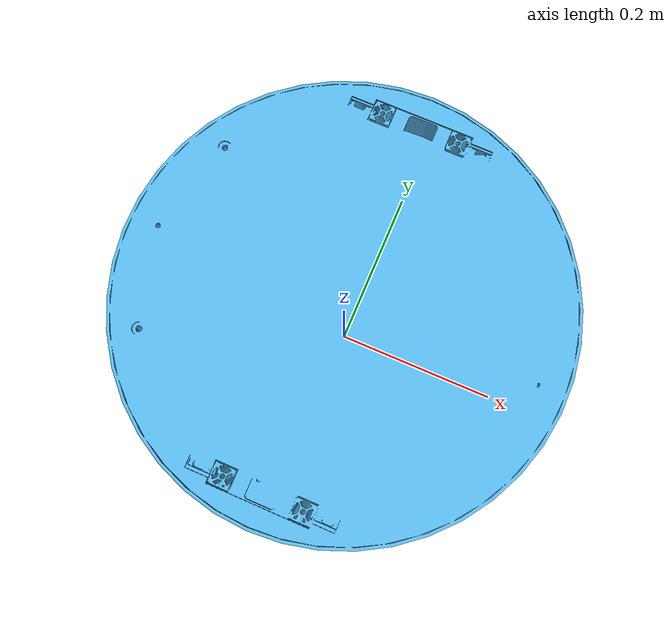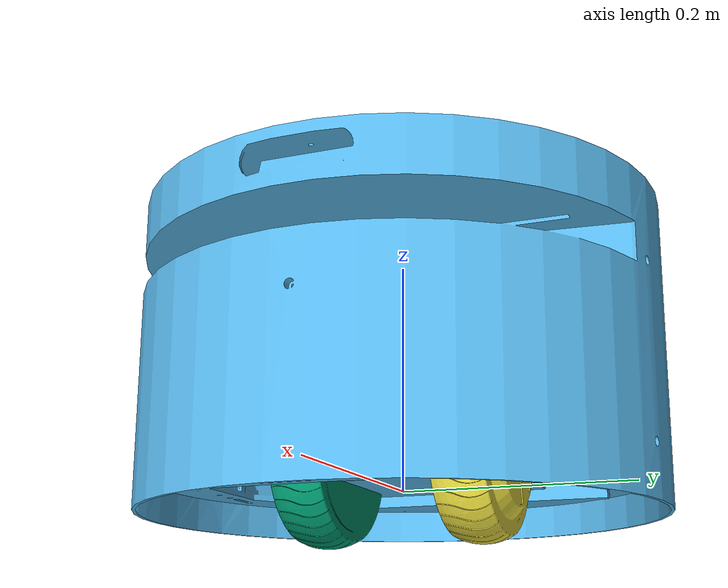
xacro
<?xml version="1.0"?>
<robot name="robot" xmlns:xacro="http://www.ros.org/wiki/xacro">

  <!-- Include Gazebo + transmissions -->
  <xacro:include filename="$(find robot_description)/urdf/robot_gazebo.xacro"/>

  <!-- Base -->
  <link name="base_footprint"/>

  <link name="base_link">
    <inertial>
      <origin xyz="0 0 0.04" rpy="0.0 0.25 0.3"/>
      <mass value="0.82573504"/>
      <inertia
        ixx="0.022124416" ixy="-0.000122941"
        ixz="0.000349387"
        iyy="0.021193702" iyz="-0.0000501209"
        izz="0.020064271"/>
    </inertial>

    <visual>
      <geometry>
        <mesh filename="package://robot_description/meshes/base_link.STL"/>
      </geometry>
    </visual>

    <collision>
      <geometry>
        <mesh filename="package://robot_description/meshes/base_link.STL"/>
      </geometry>
    </collision>
  </link>

  <joint name="base_joint" type="fixed">
    <parent link="base_footprint"/>
    <child link="base_link"/>
    <origin xyz="0 0 0.033" rpy="0 0 0"/>
  </joint>

  <!-- Right Wheel -->
  <link name="wheel_right_link">
    <inertial>
      <mass value="0.053"/>
      <inertia ixx="1.88e-05" iyy="3.11e-05" izz="1.88e-05"
               ixy="0" ixz="0" iyz="0"/>
    </inertial>

    <visual>
      <origin xyz="0 0 0" rpy="1.57 0 0"/>
      <geometry>
        <mesh filename="package://robot_description/meshes/wheel_right_link.STL"/>
      </geometry>
    </visual>

    <collision>
      <geometry>
        <sphere radius="0.033"/>
      </geometry>
    </collision>
  </link>

  <joint name="wheel_right_joint" type="continuous">
    <parent link="base_link"/>
    <child link="wheel_right_link"/>
    <origin xyz="0 -0.07 0" rpy="0 0 0"/>
    <axis xyz="0 1 0"/>
  </joint>

  <!-- Left Wheel -->
  <link name="wheel_left_link">
    <inertial>
      <mass value="0.053"/>
      <inertia ixx="1.88e-05" iyy="3.11e-05" izz="1.88e-05"
               ixy="0" ixz="0" iyz="0"/>
    </inertial>

    <visual>
      <origin xyz="0 0 0" rpy="-1.57 0 0"/>
      <geometry>
        <mesh filename="package://robot_description/meshes/wheel_left_link.STL"/>
      </geometry>
    </visual>

    <collision>
      <geometry>
        <sphere radius="0.033"/>
      </geometry>
    </collision>
  </link>

  <joint name="wheel_left_joint" type="continuous">
    <parent link="base_link"/>
    <child link="wheel_left_link"/>
    <origin xyz="0 0.07 0" rpy="0 0 0"/>
    <axis xyz="0 1 0"/>
  </joint>

  <!-- IMU -->
  <link name="imu_link"/>

  <joint name="imu_joint" type="fixed">
    <parent link="base_link"/>
    <child link="imu_link"/>
    <origin xyz="0 0 0.07" rpy="3.14159 0 0"/>
  </joint>

</robot>
